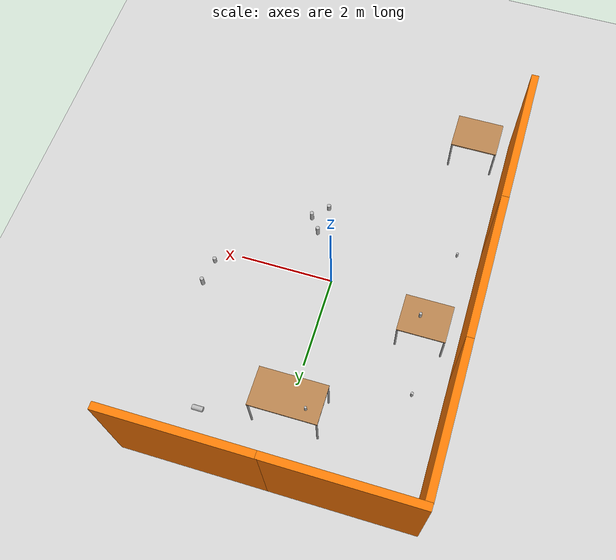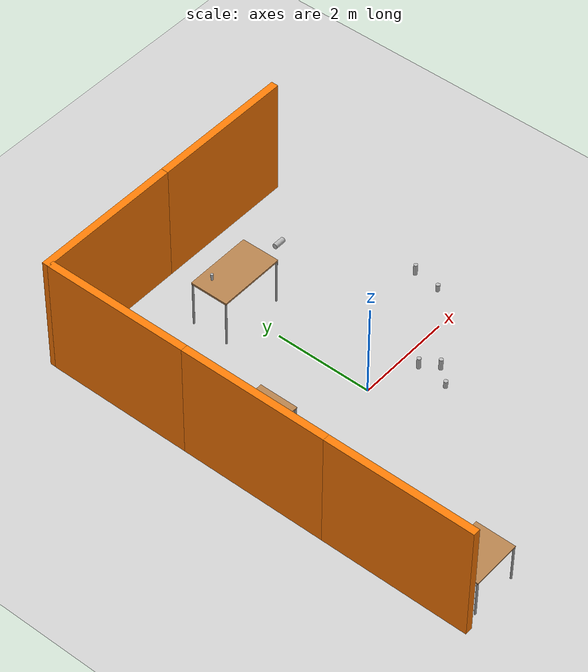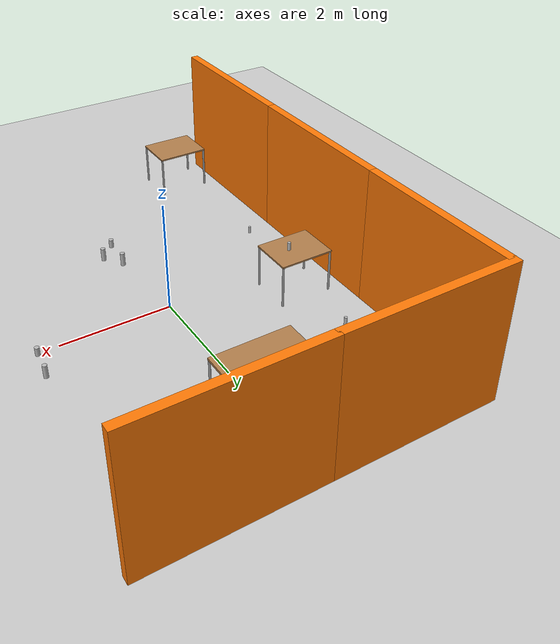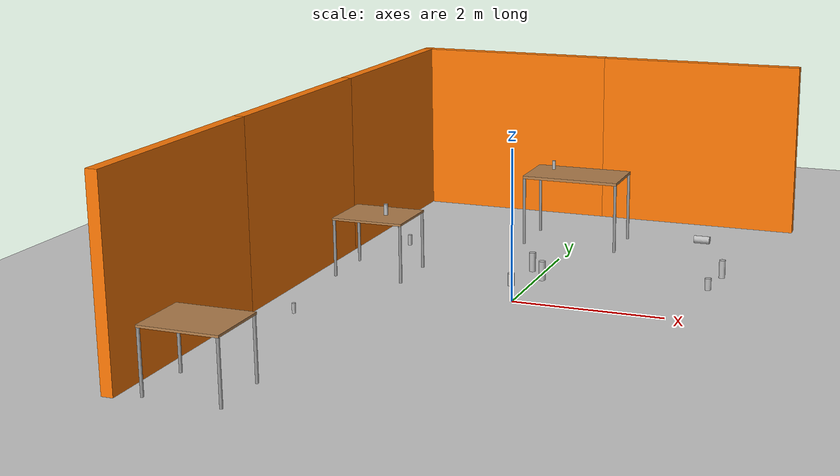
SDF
<sdf version="1.6">
 <world name="default">
  <light name="sun" type="directional">
   <pose>0 0 10 0 -0 0</pose>
   <diffuse>0.8 0.8 0.8 1</diffuse>
   <specular>0.1 0.1 0.1 1</specular>
   <attenuation>
    <range>1000</range>
    <constant>0.9</constant>
    <linear>0.01</linear>
    <quadratic>0.001</quadratic>
   </attenuation>
   <direction>-0.5 0.5 -1</direction>
  </light>
  <model name="ground_plane">
   <static>1</static>
   <link name="link">
    <collision name="collision">
     <geometry><plane><normal>0 0 1</normal><size>100 100</size></plane></geometry>
     <surface><friction><ode><mu>100</mu><mu2>50</mu2></ode></friction></surface>
    </collision>
    <visual name="visual">
     <cast_shadows>0</cast_shadows>
     <geometry><plane><normal>0 0 1</normal><size>100 100</size></plane></geometry>
     <material>
      <script><uri>file://media/materials/scripts/gazebo.material</uri><name>Gazebo/Grey</name></script>
     </material>
    </visual>
   </link>
  </model>
  <gravity>0 0 -9.8</gravity>
  <magnetic_field>6e-06 2.3e-05 -4.2e-05</magnetic_field>
  <atmosphere type="adiabatic"/>
  <physics name="default_physics" default="0" type="ode">
   <max_step_size>0.001</max_step_size>
   <real_time_factor>1</real_time_factor>
   <real_time_update_rate>1000</real_time_update_rate>
  </physics>
  <scene><ambient>0.4 0.4 0.4 1</ambient><background>0.7 0.7 0.7 1</background><shadows>1</shadows></scene>
  <spherical_coordinates>
   <surface_model>EARTH_WGS84</surface_model>
   <latitude_deg>0</latitude_deg>
   <longitude_deg>0</longitude_deg>
   <elevation>0</elevation>
   <heading_deg>0</heading_deg>
  </spherical_coordinates>
  <model name="Orange_Wall_clone">
   <pose>-3 0 0 0 -0 1.5708</pose>
   <link name="Wall_4">
    <collision name="Wall_4_Collision">
     <geometry><box><size>3 0.15 2.5</size></box></geometry>
     <pose>0 0 1.25 0 -0 0</pose>
    </collision>
    <visual name="Wall_4_Visual">
     <pose>0 0 1.25 0 -0 0</pose>
     <geometry><box><size>3 0.15 2.5</size></box></geometry>
     <material>
      <script><uri>file://media/materials/scripts/gazebo.material</uri><name>Gazebo/Grey</name></script>
      <ambient>0.996078 0.47451 0.0196078 1</ambient>
     </material>
    </visual>
   </link>
   <static>1</static>
  </model>
  <model name="Orange_Wall_clone_clone">
   <pose>-3 -3 0 0 -0 1.5708</pose>
   <link name="Wall_4">
    <collision name="Wall_4_Collision">
     <geometry><box><size>3 0.15 2.5</size></box></geometry>
     <pose>0 0 1.25 0 -0 0</pose>
    </collision>
    <visual name="Wall_4_Visual">
     <pose>0 0 1.25 0 -0 0</pose>
     <geometry><box><size>3 0.15 2.5</size></box></geometry>
     <material>
      <script><uri>file://media/materials/scripts/gazebo.material</uri><name>Gazebo/Grey</name></script>
      <ambient>0.996078 0.47451 0.0196078 1</ambient>
     </material>
    </visual>
   </link>
   <static>1</static>
  </model>
  <model name="Orange_Wall_clone_clone_0">
   <pose>-3 3 0 0 -0 1.5708</pose>
   <link name="Wall_4">
    <collision name="Wall_4_Collision">
     <geometry><box><size>3 0.15 2.5</size></box></geometry>
     <pose>0 0 1.25 0 -0 0</pose>
    </collision>
    <visual name="Wall_4_Visual">
     <pose>0 0 1.25 0 -0 0</pose>
     <geometry><box><size>3 0.15 2.5</size></box></geometry>
     <material>
      <script><uri>file://media/materials/scripts/gazebo.material</uri><name>Gazebo/Grey</name></script>
      <ambient>0.996078 0.47451 0.0196078 1</ambient>
     </material>
    </visual>
   </link>
   <static>1</static>
  </model>
  <model name="Orange_Wall_clone_clone_0_clone">
   <pose>-1.57083 4.5404 0 0 -0 4e-06</pose>
   <link name="Wall_4">
    <collision name="Wall_4_Collision">
     <geometry><box><size>3 0.15 2.5</size></box></geometry>
     <pose>0 0 1.25 0 -0 0</pose>
    </collision>
    <visual name="Wall_4_Visual">
     <pose>0 0 1.25 0 -0 0</pose>
     <geometry><box><size>3 0.15 2.5</size></box></geometry>
     <material>
      <script><uri>file://media/materials/scripts/gazebo.material</uri><name>Gazebo/Grey</name></script>
      <ambient>0.996078 0.47451 0.0196078 1</ambient>
     </material>
    </visual>
   </link>
   <static>1</static>
  </model>
  <model name="Orange_Wall_clone_clone_0_clone_0">
   <pose>1.38863 4.54044 0 0 -0 4e-06</pose>
   <link name="Wall_4">
    <collision name="Wall_4_Collision">
     <geometry><box><size>3 0.15 2.5</size></box></geometry>
     <pose>0 0 1.25 0 -0 0</pose>
    </collision>
    <visual name="Wall_4_Visual">
     <pose>0 0 1.25 0 -0 0</pose>
     <geometry><box><size>3 0.15 2.5</size></box></geometry>
     <material>
      <script><uri>file://media/materials/scripts/gazebo.material</uri><name>Gazebo/Grey</name></script>
      <ambient>0.996078 0.47451 0.0196078 1</ambient>
     </material>
    </visual>
   </link>
   <static>1</static>
  </model>
  <model name="table_0">
   <static>0</static>
   <link name="link">
    <collision name="surface">
     <pose>0 0 1 0 -0 0</pose>
     <geometry><box><size>1.5 0.8 0.03</size></box></geometry>
     <surface><friction><ode><mu>0.6</mu><mu2>0.6</mu2></ode></friction></surface>
    </collision>
    <visual name="visual1">
     <pose>0 0 1 0 -0 0</pose>
     <geometry><box><size>1.4 0.8 0.04</size></box></geometry>
     <material>
      <script><uri>file://media/materials/scripts/gazebo.material</uri><name>Gazebo/Wood</name></script>
     </material>
    </visual>
    <collision name="front_left_leg">
     <pose>0.68 0.38 0.5 0 -0 0</pose>
     <geometry><cylinder><radius>0.02</radius><length>1</length></cylinder></geometry>
    </collision>
    <visual name="front_left_leg">
     <pose>0.68 0.38 0.5 0 -0 0</pose>
     <geometry><cylinder><radius>0.02</radius><length>1</length></cylinder></geometry>
     <material>
      <script><uri>file://media/materials/scripts/gazebo.material</uri><name>Gazebo/Grey</name></script>
     </material>
    </visual>
    <collision name="front_right_leg">
     <pose>0.68 -0.38 0.5 0 -0 0</pose>
     <geometry><cylinder><radius>0.02</radius><length>1</length></cylinder></geometry>
    </collision>
    <visual name="front_right_leg">
     <pose>0.68 -0.38 0.5 0 -0 0</pose>
     <geometry><cylinder><radius>0.02</radius><length>1</length></cylinder></geometry>
     <material>
      <script><uri>file://media/materials/scripts/gazebo.material</uri><name>Gazebo/Grey</name></script>
     </material>
    </visual>
    <collision name="back_right_leg">
     <pose>-0.68 -0.38 0.5 0 -0 0</pose>
     <geometry><cylinder><radius>0.02</radius><length>1</length></cylinder></geometry>
    </collision>
    <visual name="back_right_leg">
     <pose>-0.68 -0.38 0.5 0 -0 0</pose>
     <geometry><cylinder><radius>0.02</radius><length>1</length></cylinder></geometry>
     <material>
      <script><uri>file://media/materials/scripts/gazebo.material</uri><name>Gazebo/Grey</name></script>
     </material>
    </visual>
    <collision name="back_left_leg">
     <pose>-0.68 0.38 0.5 0 -0 0</pose>
     <geometry><cylinder><radius>0.02</radius><length>1</length></cylinder></geometry>
    </collision>
    <visual name="back_left_leg">
     <pose>-0.68 0.38 0.5 0 -0 0</pose>
     <geometry><cylinder><radius>0.02</radius><length>1</length></cylinder></geometry>
     <material>
      <script><uri>file://media/materials/scripts/gazebo.material</uri><name>Gazebo/Grey</name></script>
     </material>
    </visual>
    <inertial>
     <inertia><ixx>1</ixx><ixy>0</ixy><ixz>0</ixz><iyy>1</iyy><iyz>0</iyz><izz>1</izz></inertia>
     <mass>1</mass>
    </inertial>
   </link>
   <pose>-0.043228 2.97852 -0.002047 -0.000231 0.000412 0.002723</pose>
  </model>
  <model name="bifrutas_tropical_can">
   <static>0</static>
   <link name="link">
    <inertial>
     <mass>0.25</mass>
     <inertia><ixx>0</ixx><ixy>0</ixy><ixz>0</ixz><iyy>0</iyy><iyz>0</iyz><izz>0</izz></inertia>
    </inertial>
    <collision name="collision">
     <geometry><cylinder><radius>0.025</radius><length>0.132</length></cylinder></geometry>
    </collision>
    <visual name="visual">
     <geometry><cylinder><radius>0.025</radius><length>0.132</length></cylinder></geometry>
     <material>
      <script>
       <uri>model://bifrutas_tropical_can/material/scripts</uri>
       <uri>model://bifrutas_tropical_can/material/textures</uri>
       <name>Custom/bifrutas_tropical_can</name>
      </script>
     </material>
    </visual>
    <velocity_decay><linear>0</linear><angular>0</angular></velocity_decay>
   </link>
   <pose>-0.449543 3.15219 1.08108 -0.001021 0.000728 0.003327</pose>
  </model>
  <model name="beer">
   <link name="link">
    <pose>0 0 0.115 0 -0 0</pose>
    <inertial>
     <mass>0.39</mass>
     <inertia><ixx>0.00058</ixx><ixy>0</ixy><ixz>0</ixz><iyy>0.00058</iyy><iyz>0</iyz><izz>0.00019</izz></inertia>
    </inertial>
    <collision name="collision">
     <geometry><cylinder><radius>0.055</radius><length>0.23</length></cylinder></geometry>
    </collision>
    <visual name="visual">
     <geometry><cylinder><radius>0.055</radius><length>0.23</length></cylinder></geometry>
     <material>
      <script>
       <uri>model://beer/materials/scripts</uri>
       <uri>model://beer/materials/textures</uri>
       <name>Beer/Diffuse</name>
      </script>
     </material>
    </visual>
   </link>
   <pose>1.848 3.46627 0.054918 1.56947 1.29939 -1.57207</pose>
  </model>
  <model name="bifrutas_tropical_can_0">
   <static>0</static>
   <link name="link">
    <inertial>
     <mass>0.25</mass>
     <inertia><ixx>0</ixx><ixy>0</ixy><ixz>0</ixz><iyy>0</iyy><iyz>0</iyz><izz>0</izz></inertia>
    </inertial>
    <collision name="collision">
     <geometry><cylinder><radius>0.025</radius><length>0.132</length></cylinder></geometry>
    </collision>
    <visual name="visual">
     <geometry><cylinder><radius>0.025</radius><length>0.132</length></cylinder></geometry>
     <material>
      <script>
       <uri>model://bifrutas_tropical_can/material/scripts</uri>
       <uri>model://bifrutas_tropical_can/material/textures</uri>
       <name>Custom/bifrutas_tropical_can</name>
      </script>
     </material>
    </visual>
    <velocity_decay><linear>0</linear><angular>0</angular></velocity_decay>
   </link>
   <pose>-2.42736 -1.34803 0.06599 -2e-06 -3e-06 1e-06</pose>
  </model>
  <model name="biscuits_pack">
   <static>0</static>
   <link name="link">
    <inertial>
     <mass>0.25</mass>
     <inertia><ixx>0</ixx><ixy>0</ixy><ixz>0</ixz><iyy>0</iyy><iyz>0</iyz><izz>0</izz></inertia>
    </inertial>
    <collision name="collision">
     <geometry><cylinder><radius>0.029</radius><length>0.15</length></cylinder></geometry>
    </collision>
    <visual name="visual">
     <geometry><cylinder><radius>0.029</radius><length>0.15</length></cylinder></geometry>
     <material>
      <script>
       <uri>model://biscuits_pack/material/scripts</uri>
       <uri>model://biscuits_pack/material/textures</uri>
       <name>Custom/biscuits_pack</name>
      </script>
     </material>
    </visual>
    <velocity_decay><linear>0</linear><angular>0</angular></velocity_decay>
   </link>
   <pose>-2.27398 1.97783 0.075 -5e-06 8e-06 0</pose>
  </model>
  <model name="table_1">
   <static>1</static>
   <link name="link">
    <collision name="surface">
     <pose>0 0 0.8 0 -0 0</pose>
     <geometry><box><size>1 0.8 0.03</size></box></geometry>
    </collision>
    <visual name="visual1">
     <pose>0 0 0.8 0 -0 0</pose>
     <geometry><box><size>1 0.8 0.03</size></box></geometry>
     <material>
      <script><uri>file://media/materials/scripts/gazebo.material</uri><name>Gazebo/Wood</name></script>
     </material>
    </visual>
    <collision name="front_left_leg">
     <pose>0.48 0.38 0.4 0 -0 0</pose>
     <geometry><cylinder><radius>0.02</radius><length>0.8</length></cylinder></geometry>
    </collision>
    <visual name="front_left_leg">
     <pose>0.48 0.38 0.4 0 -0 0</pose>
     <geometry><cylinder><radius>0.02</radius><length>0.8</length></cylinder></geometry>
     <material>
      <script><uri>file://media/materials/scripts/gazebo.material</uri><name>Gazebo/Grey</name></script>
     </material>
    </visual>
    <collision name="front_right_leg">
     <pose>0.48 -0.38 0.4 0 -0 0</pose>
     <geometry><cylinder><radius>0.02</radius><length>0.8</length></cylinder></geometry>
    </collision>
    <visual name="front_right_leg">
     <pose>0.48 -0.38 0.4 0 -0 0</pose>
     <geometry><cylinder><radius>0.02</radius><length>0.8</length></cylinder></geometry>
     <material>
      <script><uri>file://media/materials/scripts/gazebo.material</uri><name>Gazebo/Grey</name></script>
     </material>
    </visual>
    <collision name="back_right_leg">
     <pose>-0.48 -0.38 0.4 0 -0 0</pose>
     <geometry><cylinder><radius>0.02</radius><length>0.8</length></cylinder></geometry>
    </collision>
    <visual name="back_right_leg">
     <pose>-0.48 -0.38 0.4 0 -0 0</pose>
     <geometry><cylinder><radius>0.02</radius><length>0.8</length></cylinder></geometry>
     <material>
      <script><uri>file://media/materials/scripts/gazebo.material</uri><name>Gazebo/Grey</name></script>
     </material>
    </visual>
    <collision name="back_left_leg">
     <pose>-0.48 0.38 0.4 0 -0 0</pose>
     <geometry><cylinder><radius>0.02</radius><length>0.8</length></cylinder></geometry>
    </collision>
    <visual name="back_left_leg">
     <pose>-0.48 0.38 0.4 0 -0 0</pose>
     <geometry><cylinder><radius>0.02</radius><length>0.8</length></cylinder></geometry>
     <material>
      <script><uri>file://media/materials/scripts/gazebo.material</uri><name>Gazebo/Grey</name></script>
     </material>
    </visual>
    <velocity_decay><linear>0</linear><angular>0</angular></velocity_decay>
   </link>
   <pose>-2.14323 0.619355 0 0 -0 0</pose>
  </model>
  <model name="biscuits_pack_0">
   <static>0</static>
   <link name="link">
    <inertial>
     <mass>0.25</mass>
     <inertia><ixx>0</ixx><ixy>0</ixy><ixz>0</ixz><iyy>0</iyy><iyz>0</iyz><izz>0</izz></inertia>
    </inertial>
    <collision name="collision">
     <geometry><cylinder><radius>0.029</radius><length>0.15</length></cylinder></geometry>
    </collision>
    <visual name="visual">
     <geometry><cylinder><radius>0.029</radius><length>0.15</length></cylinder></geometry>
     <material>
      <script>
       <uri>model://biscuits_pack/material/scripts</uri>
       <uri>model://biscuits_pack/material/textures</uri>
       <name>Custom/biscuits_pack</name>
      </script>
     </material>
    </visual>
    <velocity_decay><linear>0</linear><angular>0</angular></velocity_decay>
   </link>
   <pose>-2.02974 0.615989 0.889997 -0.00021 0.000107 -3.6e-05</pose>
  </model>
  <model name="table_2">
   <static>1</static>
   <link name="link">
    <collision name="surface">
     <pose>0 0 0.8 0 -0 0</pose>
     <geometry><box><size>1 0.8 0.03</size></box></geometry>
    </collision>
    <visual name="visual1">
     <pose>0 0 0.8 0 -0 0</pose>
     <geometry><box><size>1 0.8 0.03</size></box></geometry>
     <material>
      <script><uri>file://media/materials/scripts/gazebo.material</uri><name>Gazebo/Wood</name></script>
     </material>
    </visual>
    <collision name="front_left_leg">
     <pose>0.48 0.38 0.4 0 -0 0</pose>
     <geometry><cylinder><radius>0.02</radius><length>0.8</length></cylinder></geometry>
    </collision>
    <visual name="front_left_leg">
     <pose>0.48 0.38 0.4 0 -0 0</pose>
     <geometry><cylinder><radius>0.02</radius><length>0.8</length></cylinder></geometry>
     <material>
      <script><uri>file://media/materials/scripts/gazebo.material</uri><name>Gazebo/Grey</name></script>
     </material>
    </visual>
    <collision name="front_right_leg">
     <pose>0.48 -0.38 0.4 0 -0 0</pose>
     <geometry><cylinder><radius>0.02</radius><length>0.8</length></cylinder></geometry>
    </collision>
    <visual name="front_right_leg">
     <pose>0.48 -0.38 0.4 0 -0 0</pose>
     <geometry><cylinder><radius>0.02</radius><length>0.8</length></cylinder></geometry>
     <material>
      <script><uri>file://media/materials/scripts/gazebo.material</uri><name>Gazebo/Grey</name></script>
     </material>
    </visual>
    <collision name="back_right_leg">
     <pose>-0.48 -0.38 0.4 0 -0 0</pose>
     <geometry><cylinder><radius>0.02</radius><length>0.8</length></cylinder></geometry>
    </collision>
    <visual name="back_right_leg">
     <pose>-0.48 -0.38 0.4 0 -0 0</pose>
     <geometry><cylinder><radius>0.02</radius><length>0.8</length></cylinder></geometry>
     <material>
      <script><uri>file://media/materials/scripts/gazebo.material</uri><name>Gazebo/Grey</name></script>
     </material>
    </visual>
    <collision name="back_left_leg">
     <pose>-0.48 0.38 0.4 0 -0 0</pose>
     <geometry><cylinder><radius>0.02</radius><length>0.8</length></cylinder></geometry>
    </collision>
    <visual name="back_left_leg">
     <pose>-0.48 0.38 0.4 0 -0 0</pose>
     <geometry><cylinder><radius>0.02</radius><length>0.8</length></cylinder></geometry>
     <material>
      <script><uri>file://media/materials/scripts/gazebo.material</uri><name>Gazebo/Grey</name></script>
     </material>
    </visual>
    <velocity_decay><linear>0</linear><angular>0</angular></velocity_decay>
   </link>
   <pose>-2.17332 -3.98112 0 0 -0 0</pose>
  </model>
  <model name="sprite">
   <static>0</static>
   <link name="link">
    <inertial>
     <mass>0.25</mass>
     <inertia><ixx>0</ixx><ixy>0</ixy><ixz>0</ixz><iyy>0</iyy><iyz>0</iyz><izz>0</izz></inertia>
    </inertial>
    <collision name="collision">
     <pose>0 0 0.075 -3.14159 -0 0</pose>
     <geometry><cylinder><radius>0.04</radius><length>0.15</length></cylinder></geometry>
    </collision>
    <visual name="visual">
     <pose>0 0 0.075 -3.14159 -0 0</pose>
     <geometry><cylinder><radius>0.04</radius><length>0.15</length></cylinder></geometry>
     <material>
      <script>
       <uri>model://sprite/material/scripts</uri>
       <uri>model://sprite/material/textures</uri>
       <name>Custom/sprite</name>
      </script>
     </material>
    </visual>
    <velocity_decay><linear>0</linear><angular>0</angular></velocity_decay>
   </link>
   <pose>0.445041 -1.31682 0.660008 0.00017 -7.5e-05 0</pose>
  </model>
  <model name="pringles">
   <static>0</static>
   <link name="link">
    <inertial>
     <mass>0.25</mass>
     <inertia><ixx>0</ixx><ixy>0</ixy><ixz>0</ixz><iyy>0</iyy><iyz>0</iyz><izz>0</izz></inertia>
    </inertial>
    <collision name="collision">
     <geometry><cylinder><radius>0.04</radius><length>0.235</length></cylinder></geometry>
    </collision>
    <visual name="visual">
     <geometry><cylinder><radius>0.04</radius><length>0.235</length></cylinder></geometry>
     <material>
      <script>
       <uri>model://pringles/material/scripts</uri>
       <uri>model://pringles/material/textures</uri>
       <name>Custom/pringles</name>
      </script>
     </material>
    </visual>
    <velocity_decay><linear>0</linear><angular>0</angular></velocity_decay>
   </link>
   <pose>0.501895 -0.68932 0.777506 9.2e-05 -0.000119 6e-05</pose>
  </model>
  <model name="pringles2">
   <static>0</static>
   <link name="link">
    <inertial>
     <mass>0.25</mass>
     <inertia><ixx>0</ixx><ixy>0</ixy><ixz>0</ixz><iyy>0</iyy><iyz>0</iyz><izz>0</izz></inertia>
    </inertial>
    <collision name="collision">
     <pose>0 0 0.12 -3.14159 -0 0</pose>
     <geometry><cylinder><radius>0.04</radius><length>0.235</length></cylinder></geometry>
    </collision>
    <visual name="visual">
     <pose>0 0 0.12 -3.14159 -0 0</pose>
     <geometry><cylinder><radius>0.04</radius><length>0.235</length></cylinder></geometry>
     <material>
      <script>
       <uri>model://pringles2/material/scripts</uri>
       <uri>model://pringles2/material/textures</uri>
       <name>Custom/pringles2</name>
      </script>
     </material>
    </visual>
    <velocity_decay><linear>0</linear><angular>0</angular></velocity_decay>
   </link>
   <pose>0.724331 -0.995735 0.657498 5.3e-05 -0.000174 2e-06</pose>
  </model>
  <model name="cocacola">
   <static>0</static>
   <link name="link">
    <inertial>
     <mass>0.25</mass>
     <inertia><ixx>0</ixx><ixy>0</ixy><ixz>0</ixz><iyy>0</iyy><iyz>0</iyz><izz>0</izz></inertia>
    </inertial>
    <collision name="collision">
     <pose>0 0 0.075 -3.14159 -0 0</pose>
     <geometry><cylinder><radius>0.04</radius><length>0.15</length></cylinder></geometry>
    </collision>
    <visual name="visual">
     <pose>0 0 0.075 -3.14159 -0 0</pose>
     <geometry><cylinder><radius>0.04</radius><length>0.15</length></cylinder></geometry>
     <material>
      <script>
       <uri>model://cocacola/material/scripts</uri>
       <uri>model://cocacola/material/textures</uri>
       <name>Custom/cocacola</name>
      </script>
     </material>
    </visual>
    <velocity_decay><linear>0</linear><angular>0</angular></velocity_decay>
   </link>
   <pose>2.45038 0.394279 0.299999 4.9e-05 0.000203 1e-06</pose>
  </model>
  <model name="pringles_0">
   <static>0</static>
   <link name="link">
    <inertial>
     <mass>0.25</mass>
     <inertia><ixx>0</ixx><ixy>0</ixy><ixz>0</ixz><iyy>0</iyy><iyz>0</iyz><izz>0</izz></inertia>
    </inertial>
    <collision name="collision">
     <geometry><cylinder><radius>0.04</radius><length>0.235</length></cylinder></geometry>
    </collision>
    <visual name="visual">
     <geometry><cylinder><radius>0.04</radius><length>0.235</length></cylinder></geometry>
     <material>
      <script>
       <uri>model://pringles/material/scripts</uri>
       <uri>model://pringles/material/textures</uri>
       <name>Custom/pringles</name>
      </script>
     </material>
    </visual>
    <velocity_decay><linear>0</linear><angular>0</angular></velocity_decay>
   </link>
   <pose>2.51617 0.95128 0.417494 -0.0001 -1.2e-05 2e-06</pose>
  </model>
 </world>
</sdf>
